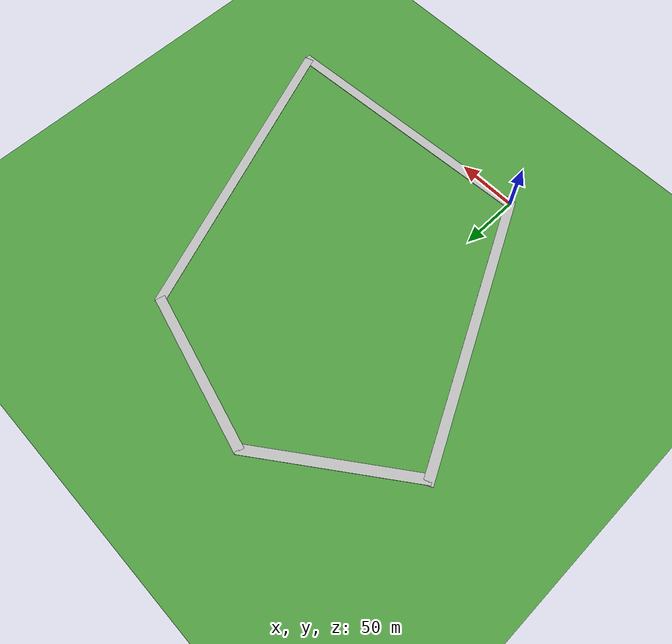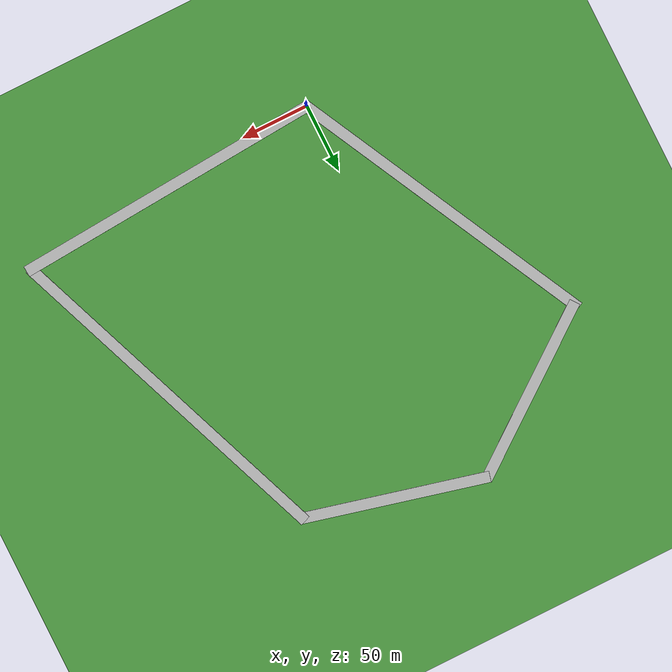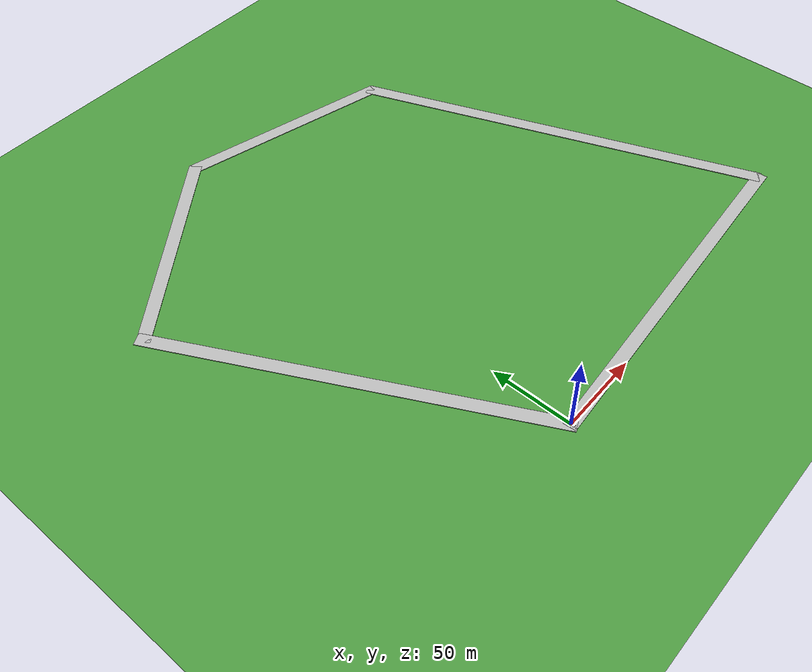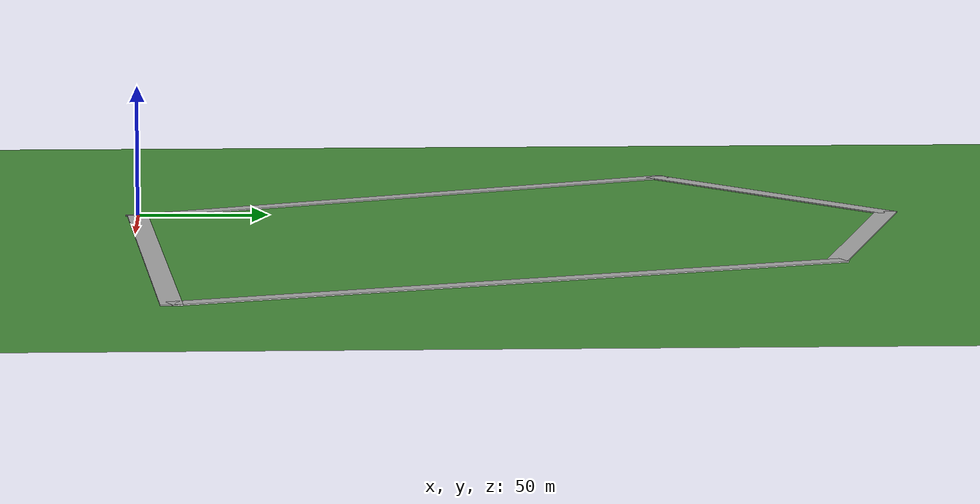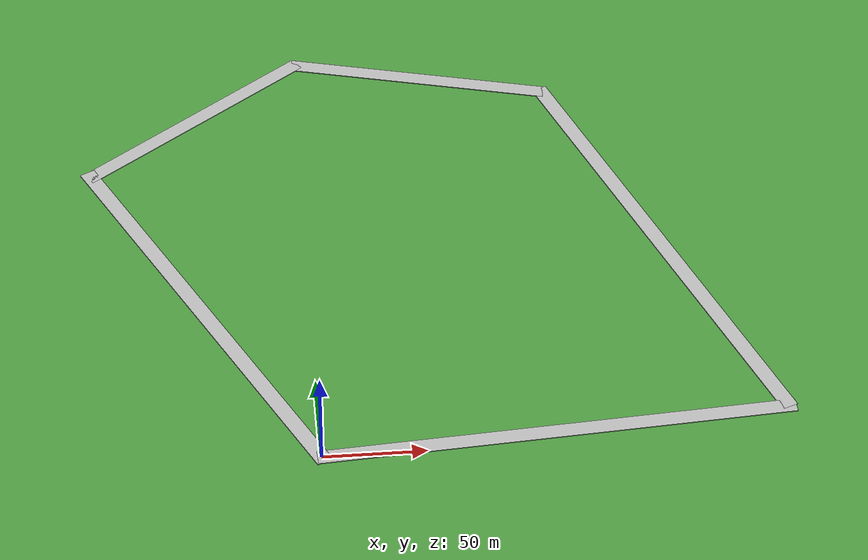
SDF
<?xml version="1.0" ?>
<sdf version="1.5">
  <model name="road_plane">
    <static>true</static>
    <link name="link_1">
      <pose>112.4 7.86 -0.5  0 0 0.0698131700797</pose>
      <collision name="collision">
        <geometry>
          <box>
            <size>229.4 8 1</size>
          </box>
        </geometry>
        <surface>
          <contact>
             <collide_bitmask>65535</collide_bitmask>
          </contact>
          <friction>
            <ode>
              <mu>100</mu>
              <mu2>50</mu2>
            </ode>
          </friction>
        </surface>
      </collision>
      <visual name="visual">
        <cast_shadows>false</cast_shadows>
        <geometry>
          <box>
            <size>229.4 8 1</size>
          </box>
        </geometry>
        <material>
          <script>
            <uri>file://media/materials/scripts/gazebo.material</uri>
            <name>Gazebo/Lane_1</name>
          </script>
        </material>
      </visual>
    </link>

    <link name="link_2">
      <pose>177 136.9 -0.5  0 0 1.9373154697137</pose>
      <collision name="collision">
        <geometry>
        <surface>
          <contact>
             <collide_bitmask>65535</collide_bitmask>
          </contact>
          <friction>
            <ode>
              <mu>100</mu>
              <mu2>50</mu2>
            </ode>
          </friction>
        </surface>
          <box>
            <size>261.5 8 1</size>
          </box>
        </geometry>
      </collision>
      <visual name="visual">
        <cast_shadows>false</cast_shadows>
        <geometry>
          <box>
            <size>261.5 8 1</size>
          </box>
        </geometry>
        <material>
          <script>
            <uri>file://media/materials/scripts/gazebo.material</uri>
            <name>Gazebo/Lane_1</name>
          </script>
        </material>
      </visual>
    </link>

    <link name="link_3">
      <pose>66.7 272.50 -0.5  0 0 2.8972465583105</pose>
      <collision name="collision">
        <geometry>
          <box>
            <size>135.7 8 1</size>
          </box>
        </geometry>
        <surface>
          <contact>
             <collide_bitmask>65535</collide_bitmask>
          </contact>
          <friction>
            <ode>
              <mu>100</mu>
              <mu2>50</mu2>
            </ode>
          </friction>
        </surface>
      </collision>
      <visual name="visual">
        <cast_shadows>false</cast_shadows>
        <geometry>
          <box>
            <size>135.7 8 1</size>
          </box>
        </geometry>
        <material>
          <script>
            <uri>file://media/materials/scripts/gazebo.material</uri>
            <name>Gazebo/Lane_1</name>
          </script>
        </material>
      </visual>
    </link>

    <link name="link_4">
      <pose>-51.4 247.9 -0.5  0 0 3.7873644768276</pose>
      <collision name="collision">
        <geometry>
          <box>
            <size>138.9 8 1</size>
          </box>
        </geometry>
        <surface>
          <contact>
             <collide_bitmask>65535</collide_bitmask>
          </contact>
          <friction>
            <ode>
              <mu>100</mu>
              <mu2>50</mu2>
            </ode>
          </friction>
        </surface>
      </collision>
      <visual name="visual">
        <cast_shadows>false</cast_shadows>
        <geometry>
          <box>
            <size>138.9 8 1</size>
          </box>
        </geometry>
        <material>
          <script>
            <uri>file://media/materials/scripts/gazebo.material</uri>
            <name>Gazebo/Lane_1</name>
          </script>
        </material>
      </visual>
    </link>

    <link name="link_5">
      <pose>-53 104 -0.5  0 0 5.1836278784231</pose>
      <collision name="collision">
        <geometry>
          <box>
            <size>240 8 1</size>
          </box>
        </geometry>
      </collision>
      <visual name="visual">
        <cast_shadows>false</cast_shadows>
        <geometry>
          <box>
            <size>240 8 1</size>
          </box>
        </geometry>
        <material>
          <script>
            <uri>file://media/materials/scripts/gazebo.material</uri>
            <name>Gazebo/Lane_1</name>
          </script>
        </material>
      </visual>
    </link>

    <link name="grassplane">
    <pose>60 150 -0.02  0 0 0</pose>
      <collision name="collision">
        <geometry>
          <plane>
            <normal>0 0 1</normal>
            <size>360 360</size>
          </plane>
        </geometry>
        <surface>
          <contact>
             <collide_bitmask>65535</collide_bitmask>
          </contact>
          <friction>
            <ode>
              <mu>100</mu>
              <mu2>50</mu2>
            </ode>
          </friction>
        </surface>
      </collision>
      <visual name="visual">
        <cast_shadows>false</cast_shadows>
        <geometry>
          <plane>
            <normal>0 0 1</normal>
            <size>350 360</size>
          </plane>
        </geometry>
        <material>
          <script>
            <uri>file://media/materials/scripts/gazebo.material</uri>
            <name>Gazebo/Grass</name>
          </script>
        </material>
      </visual>
    </link>

  </model>
</sdf>
